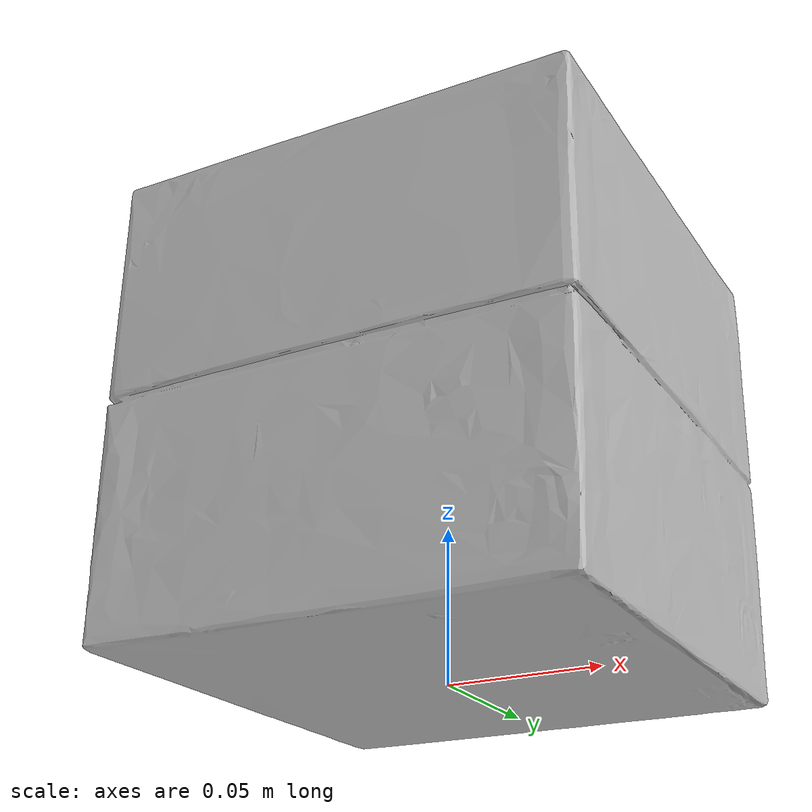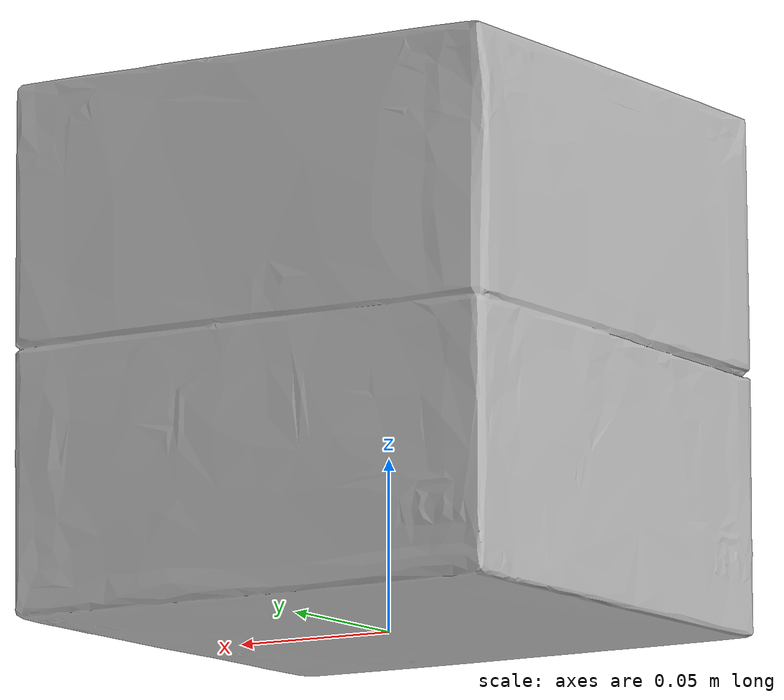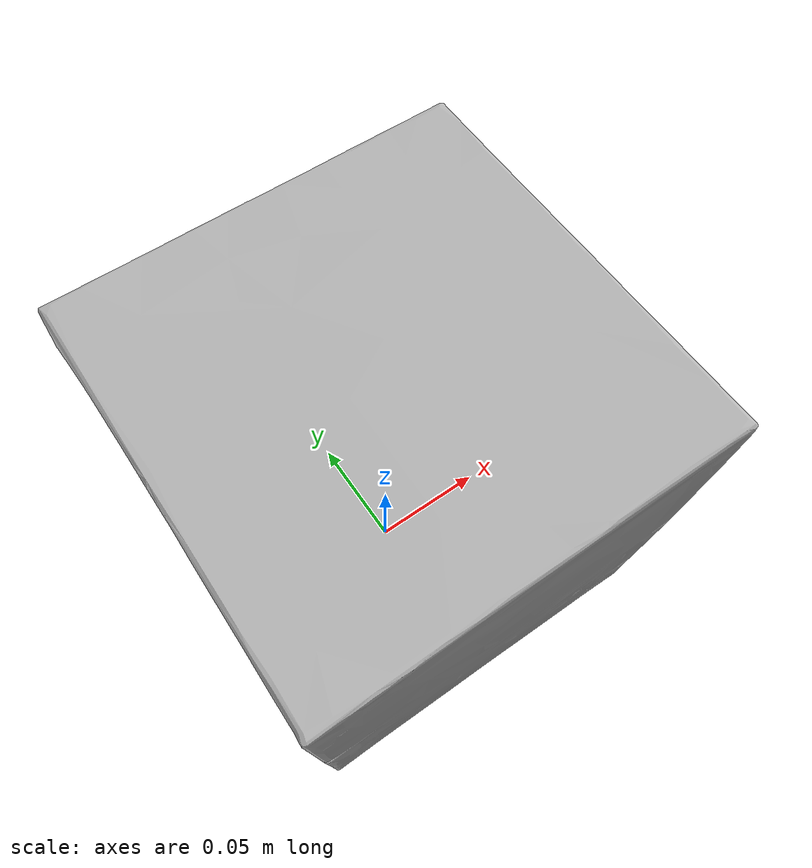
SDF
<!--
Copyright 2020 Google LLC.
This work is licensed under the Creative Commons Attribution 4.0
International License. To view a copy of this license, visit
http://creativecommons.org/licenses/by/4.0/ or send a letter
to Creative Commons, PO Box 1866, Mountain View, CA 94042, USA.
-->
<?xml version="1.0" ?>
<sdf version="1.6">
  <model name="Mad_Gab_Refresh_Card_Game">
    <link name="link_0">
      <visual name="visual">
        <geometry>
          <mesh>
            <uri>meshes/model.obj</uri>
          </mesh>
        </geometry>
      </visual>
      <collision name="collision_0">
        <geometry>
          <mesh>
            <uri>meshes/model.obj</uri>
          </mesh>
        </geometry>
      </collision>
    </link>
  </model>
</sdf>
